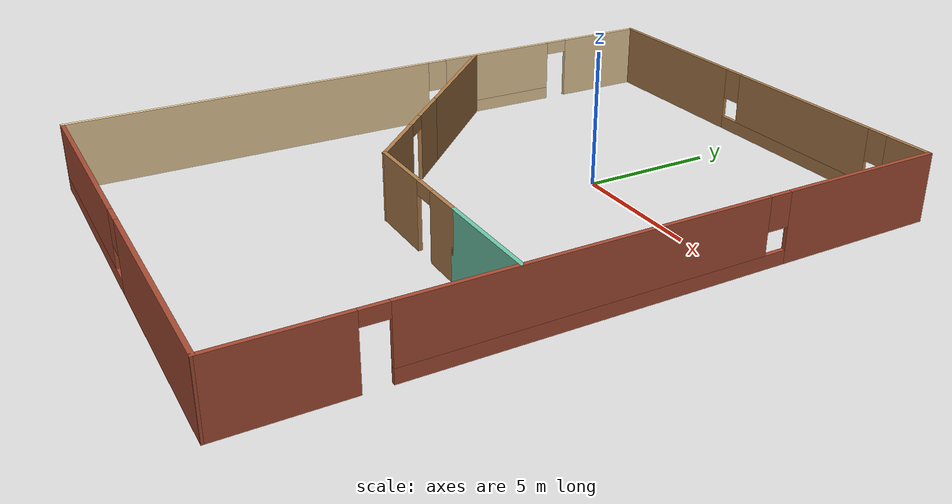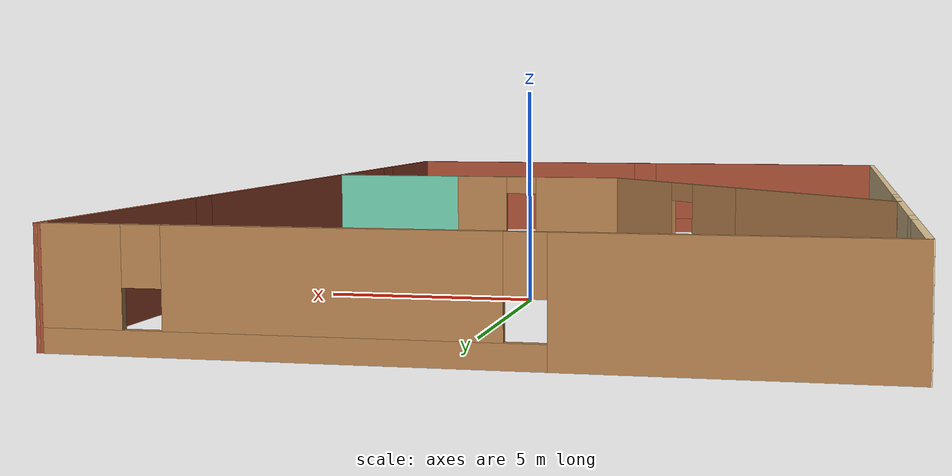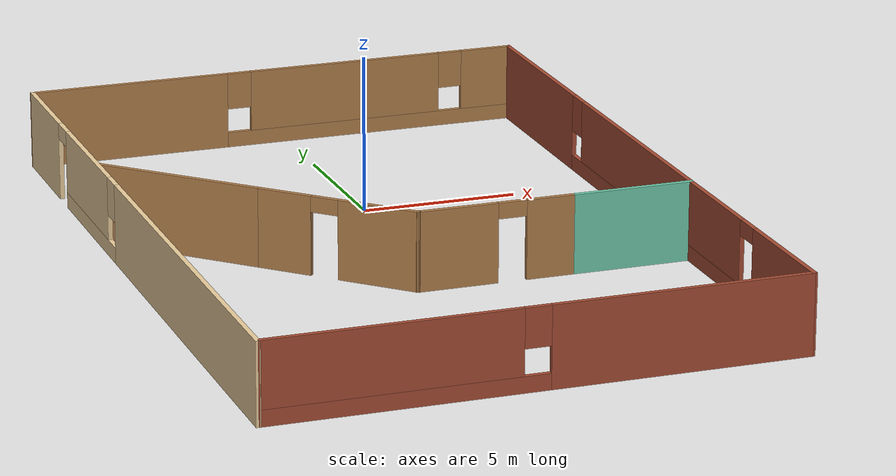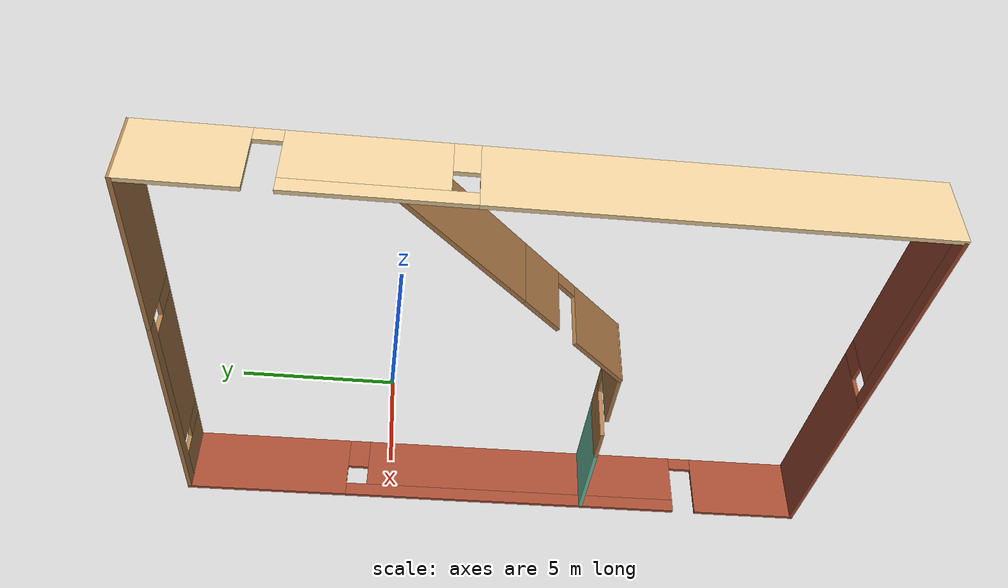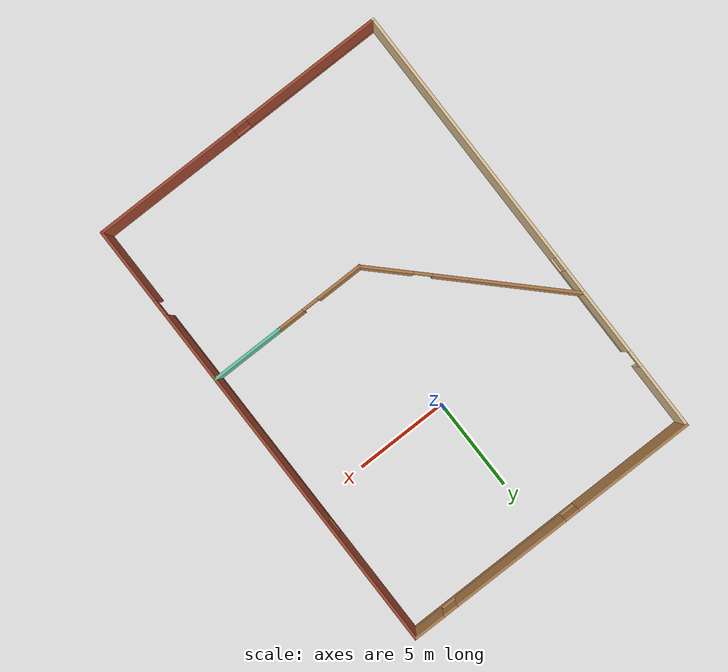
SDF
<?xml version='1.0'?>
<sdf version='1.6'>
  <model name='model'>
    <pose frame=''>-0.478725 -4.35179 0 0 -0 0</pose>
    <link name='Wall_2'>
      <pose frame=''>0.076605 12.2018 0 0 -0 0</pose>
      <visual name='Wall_2_Visual_0'>
        <pose frame=''>-4.94334 0 1.25 0 -0 0</pose>
        <geometry>
          <box>
            <size>6.61331 0.15 2.5</size>
          </box>
        </geometry>
        <material>
          <script>
            <uri>file://media/materials/scripts/gazebo.material</uri>
            <name>Gazebo/Wood</name>
          </script>
          <ambient>1 1 1 1</ambient>
        </material>
        <meta>
          <layer>0</layer>
        </meta>
      </visual>
      <collision name='Wall_2_Collision_0'>
        <geometry>
          <box>
            <size>6.61331 0.15 2.5</size>
          </box>
        </geometry>
        <pose frame=''>-4.94334 0 1.25 0 -0 0</pose>
      </collision>
      <visual name='Wall_2_Visual_1'>
        <pose frame=''>3.30666 0 0.25 0 -0 0</pose>
        <geometry>
          <box>
            <size>9.88669 0.15 0.5</size>
          </box>
        </geometry>
        <material>
          <script>
            <uri>file://media/materials/scripts/gazebo.material</uri>
            <name>Gazebo/Wood</name>
          </script>
          <ambient>1 1 1 1</ambient>
        </material>
        <meta>
          <layer>0</layer>
        </meta>
      </visual>
      <collision name='Wall_2_Collision_1'>
        <geometry>
          <box>
            <size>9.88669 0.15 0.5</size>
          </box>
        </geometry>
        <pose frame=''>3.30666 0 0.25 0 -0 0</pose>
      </collision>
      <visual name='Wall_2_Visual_2'>
        <pose frame=''>2.43911 0 1.5 0 -0 0</pose>
        <geometry>
          <box>
            <size>6.55161 0.15 2</size>
          </box>
        </geometry>
        <material>
          <script>
            <uri>file://media/materials/scripts/gazebo.material</uri>
            <name>Gazebo/Wood</name>
          </script>
          <ambient>1 1 1 1</ambient>
        </material>
        <meta>
          <layer>0</layer>
        </meta>
      </visual>
      <collision name='Wall_2_Collision_2'>
        <geometry>
          <box>
            <size>6.55161 0.15 2</size>
          </box>
        </geometry>
        <pose frame=''>2.43911 0 1.5 0 -0 0</pose>
      </collision>
      <visual name='Wall_2_Visual_3'>
        <pose frame=''>7.38246 0 1.5 0 -0 0</pose>
        <geometry>
          <box>
            <size>1.73508 0.15 2</size>
          </box>
        </geometry>
        <material>
          <script>
            <uri>file://media/materials/scripts/gazebo.material</uri>
            <name>Gazebo/Wood</name>
          </script>
          <ambient>1 1 1 1</ambient>
        </material>
        <meta>
          <layer>0</layer>
        </meta>
      </visual>
      <collision name='Wall_2_Collision_3'>
        <geometry>
          <box>
            <size>1.73508 0.15 2</size>
          </box>
        </geometry>
        <pose frame=''>7.38246 0 1.5 0 -0 0</pose>
      </collision>
      <visual name='Wall_2_Visual_4'>
        <pose frame=''>-1.23669 0 1.9 0 -0 0</pose>
        <geometry>
          <box>
            <size>0.8 0.15 1.2</size>
          </box>
        </geometry>
        <material>
          <script>
            <uri>file://media/materials/scripts/gazebo.material</uri>
            <name>Gazebo/Wood</name>
          </script>
          <ambient>1 1 1 1</ambient>
        </material>
        <meta>
          <layer>0</layer>
        </meta>
      </visual>
      <collision name='Wall_2_Collision_4'>
        <geometry>
          <box>
            <size>0.8 0.15 1.2</size>
          </box>
        </geometry>
        <pose frame=''>-1.23669 0 1.9 0 -0 0</pose>
      </collision>
      <visual name='Wall_2_Visual_5'>
        <pose frame=''>6.11492 0 1.9 0 -0 0</pose>
        <geometry>
          <box>
            <size>0.8 0.15 1.2</size>
          </box>
        </geometry>
        <material>
          <script>
            <uri>file://media/materials/scripts/gazebo.material</uri>
            <name>Gazebo/Wood</name>
          </script>
          <ambient>1 1 1 1</ambient>
        </material>
        <meta>
          <layer>0</layer>
        </meta>
      </visual>
      <collision name='Wall_2_Collision_5'>
        <geometry>
          <box>
            <size>0.8 0.15 1.2</size>
          </box>
        </geometry>
        <pose frame=''>6.11492 0 1.9 0 -0 0</pose>
      </collision>
    </link>
    <link name='Wall_28'>
      <collision name='Wall_28_Collision'>
        <geometry>
          <box>
            <size>4 0.15 2.5</size>
          </box>
        </geometry>
        <pose frame=''>0 0 1.25 0 -0 0</pose>
      </collision>
      <visual name='Wall_28_Visual'>
        <pose frame=''>0 0 1.25 0 -0 0</pose>
        <geometry>
          <box>
            <size>4 0.15 2.5</size>
          </box>
        </geometry>
        <material>
          <script>
            <uri>file://media/materials/scripts/gazebo.material</uri>
            <name>Gazebo/Grey</name>
          </script>
          <ambient>0.435294 0.796078 0.67451 1</ambient>
        </material>
        <meta>
          <layer>0</layer>
        </meta>
      </visual>
      <pose frame=''>6.25576 -3.37831 0 0 -0 0</pose>
    </link>
    <link name='Wall_3'>
      <pose frame=''>8.2155 0 0 0 0 -1.57812</pose>
      <visual name='Wall_3_Visual_0'>
        <pose frame=''>-9.19494 0 1.25 0 -0 0</pose>
        <geometry>
          <box>
            <size>6.16429 0.15 2.5</size>
          </box>
        </geometry>
        <material>
          <script>
            <uri>file://media/materials/scripts/gazebo.material</uri>
            <name>Gazebo/Bricks</name>
          </script>
          <ambient>1 0.333333 0.498039 1</ambient>
        </material>
        <meta>
          <layer>0</layer>
        </meta>
      </visual>
      <collision name='Wall_3_Collision_0'>
        <geometry>
          <box>
            <size>6.16429 0.15 2.5</size>
          </box>
        </geometry>
        <pose frame=''>-9.19494 0 1.25 0 -0 0</pose>
      </collision>
      <visual name='Wall_3_Visual_1'>
        <pose frame=''>10.1974 0 1.25 0 -0 0</pose>
        <geometry>
          <box>
            <size>4.15935 0.15 2.5</size>
          </box>
        </geometry>
        <material>
          <script>
            <uri>file://media/materials/scripts/gazebo.material</uri>
            <name>Gazebo/Bricks</name>
          </script>
          <ambient>1 0.333333 0.498039 1</ambient>
        </material>
        <meta>
          <layer>0</layer>
        </meta>
      </visual>
      <collision name='Wall_3_Collision_1'>
        <geometry>
          <box>
            <size>4.15935 0.15 2.5</size>
          </box>
        </geometry>
        <pose frame=''>10.1974 0 1.25 0 -0 0</pose>
      </collision>
      <visual name='Wall_3_Visual_2'>
        <pose frame=''>0.552472 0 0.25 0 -0 0</pose>
        <geometry>
          <box>
            <size>13.3305 0.15 0.5</size>
          </box>
        </geometry>
        <material>
          <script>
            <uri>file://media/materials/scripts/gazebo.material</uri>
            <name>Gazebo/Bricks</name>
          </script>
          <ambient>1 0.333333 0.498039 1</ambient>
        </material>
        <meta>
          <layer>0</layer>
        </meta>
      </visual>
      <collision name='Wall_3_Collision_2'>
        <geometry>
          <box>
            <size>13.3305 0.15 0.5</size>
          </box>
        </geometry>
        <pose frame=''>0.552472 0 0.25 0 -0 0</pose>
      </collision>
      <visual name='Wall_3_Visual_3'>
        <pose frame=''>0.952472 0 1.5 0 -0 0</pose>
        <geometry>
          <box>
            <size>12.5305 0.15 2</size>
          </box>
        </geometry>
        <material>
          <script>
            <uri>file://media/materials/scripts/gazebo.material</uri>
            <name>Gazebo/Bricks</name>
          </script>
          <ambient>1 0.333333 0.498039 1</ambient>
        </material>
        <meta>
          <layer>0</layer>
        </meta>
      </visual>
      <collision name='Wall_3_Collision_3'>
        <geometry>
          <box>
            <size>12.5305 0.15 2</size>
          </box>
        </geometry>
        <pose frame=''>0.952472 0 1.5 0 -0 0</pose>
      </collision>
      <visual name='Wall_3_Visual_4'>
        <pose frame=''>-5.71279 0 1.9 0 -0 0</pose>
        <geometry>
          <box>
            <size>0.8 0.15 1.2</size>
          </box>
        </geometry>
        <material>
          <script>
            <uri>file://media/materials/scripts/gazebo.material</uri>
            <name>Gazebo/Bricks</name>
          </script>
          <ambient>1 0.333333 0.498039 1</ambient>
        </material>
        <meta>
          <layer>0</layer>
        </meta>
      </visual>
      <collision name='Wall_3_Collision_4'>
        <geometry>
          <box>
            <size>0.8 0.15 1.2</size>
          </box>
        </geometry>
        <pose frame=''>-5.71279 0 1.9 0 -0 0</pose>
      </collision>
      <visual name='Wall_3_Visual_5'>
        <pose frame=''>7.66774 0 2.25 0 -0 0</pose>
        <geometry>
          <box>
            <size>0.9 0.15 0.5</size>
          </box>
        </geometry>
        <material>
          <script>
            <uri>file://media/materials/scripts/gazebo.material</uri>
            <name>Gazebo/Bricks</name>
          </script>
          <ambient>1 0.333333 0.498039 1</ambient>
        </material>
        <meta>
          <layer>0</layer>
        </meta>
      </visual>
      <collision name='Wall_3_Collision_5'>
        <geometry>
          <box>
            <size>0.9 0.15 0.5</size>
          </box>
        </geometry>
        <pose frame=''>7.66774 0 2.25 0 -0 0</pose>
      </collision>
    </link>
    <link name='Wall_4'>
      <pose frame=''>-0.048813 -12.2018 0 0 -0 3.14159</pose>
      <visual name='Wall_4_Visual_0'>
        <pose frame=''>-4.24319 0 1.25 0 -0 0</pose>
        <geometry>
          <box>
            <size>8.01363 0.15 2.5</size>
          </box>
        </geometry>
        <material>
          <script>
            <uri>file://media/materials/scripts/gazebo.material</uri>
            <name>Gazebo/Bricks</name>
          </script>
          <ambient>1 1 1 1</ambient>
        </material>
        <meta>
          <layer>0</layer>
        </meta>
      </visual>
      <collision name='Wall_4_Collision_0'>
        <geometry>
          <box>
            <size>8.01363 0.15 2.5</size>
          </box>
        </geometry>
        <pose frame=''>-4.24319 0 1.25 0 -0 0</pose>
      </collision>
      <visual name='Wall_4_Visual_1'>
        <pose frame=''>4.00681 0 0.25 0 -0 0</pose>
        <geometry>
          <box>
            <size>8.48637 0.15 0.5</size>
          </box>
        </geometry>
        <material>
          <script>
            <uri>file://media/materials/scripts/gazebo.material</uri>
            <name>Gazebo/Bricks</name>
          </script>
          <ambient>1 1 1 1</ambient>
        </material>
        <meta>
          <layer>0</layer>
        </meta>
      </visual>
      <collision name='Wall_4_Collision_1'>
        <geometry>
          <box>
            <size>8.48637 0.15 0.5</size>
          </box>
        </geometry>
        <pose frame=''>4.00681 0 0.25 0 -0 0</pose>
      </collision>
      <visual name='Wall_4_Visual_2'>
        <pose frame=''>4.40681 0 1.5 0 -0 0</pose>
        <geometry>
          <box>
            <size>7.68637 0.15 2</size>
          </box>
        </geometry>
        <material>
          <script>
            <uri>file://media/materials/scripts/gazebo.material</uri>
            <name>Gazebo/Bricks</name>
          </script>
          <ambient>1 1 1 1</ambient>
        </material>
        <meta>
          <layer>0</layer>
        </meta>
      </visual>
      <collision name='Wall_4_Collision_2'>
        <geometry>
          <box>
            <size>7.68637 0.15 2</size>
          </box>
        </geometry>
        <pose frame=''>4.40681 0 1.5 0 -0 0</pose>
      </collision>
      <visual name='Wall_4_Visual_3'>
        <pose frame=''>0.163631 0 1.9 0 -0 0</pose>
        <geometry>
          <box>
            <size>0.8 0.15 1.2</size>
          </box>
        </geometry>
        <material>
          <script>
            <uri>file://media/materials/scripts/gazebo.material</uri>
            <name>Gazebo/Bricks</name>
          </script>
          <ambient>1 1 1 1</ambient>
        </material>
        <meta>
          <layer>0</layer>
        </meta>
      </visual>
      <collision name='Wall_4_Collision_3'>
        <geometry>
          <box>
            <size>0.8 0.15 1.2</size>
          </box>
        </geometry>
        <pose frame=''>0.163631 0 1.9 0 -0 0</pose>
      </collision>
    </link>
    <link name='Wall_5'>
      <pose frame=''>-8.20156 0 0 0 -0 1.56234</pose>
      <visual name='Wall_5_Visual_0'>
        <pose frame=''>-5.11226 0 1.25 0 -0 0</pose>
        <geometry>
          <box>
            <size>14.3291 0.15 2.5</size>
          </box>
        </geometry>
        <material>
          <script>
            <uri>file://media/materials/scripts/gazebo.material</uri>
            <name>Gazebo/Grey</name>
          </script>
          <ambient>0.921569 0.807843 0.615686 1</ambient>
        </material>
        <meta>
          <layer>0</layer>
        </meta>
      </visual>
      <collision name='Wall_5_Collision_0'>
        <geometry>
          <box>
            <size>14.3291 0.15 2.5</size>
          </box>
        </geometry>
        <pose frame=''>-5.11226 0 1.25 0 -0 0</pose>
      </collision>
      <visual name='Wall_5_Visual_1'>
        <pose frame=''>10.4712 0 1.25 0 -0 0</pose>
        <geometry>
          <box>
            <size>3.61121 0.15 2.5</size>
          </box>
        </geometry>
        <material>
          <script>
            <uri>file://media/materials/scripts/gazebo.material</uri>
            <name>Gazebo/Grey</name>
          </script>
          <ambient>0.921569 0.807843 0.615686 1</ambient>
        </material>
        <meta>
          <layer>0</layer>
        </meta>
      </visual>
      <collision name='Wall_5_Collision_1'>
        <geometry>
          <box>
            <size>3.61121 0.15 2.5</size>
          </box>
        </geometry>
        <pose frame=''>10.4712 0 1.25 0 -0 0</pose>
      </collision>
      <visual name='Wall_5_Visual_2'>
        <pose frame=''>4.90895 0 0.25 0 -0 0</pose>
        <geometry>
          <box>
            <size>5.71331 0.15 0.5</size>
          </box>
        </geometry>
        <material>
          <script>
            <uri>file://media/materials/scripts/gazebo.material</uri>
            <name>Gazebo/Grey</name>
          </script>
          <ambient>0.921569 0.807843 0.615686 1</ambient>
        </material>
        <meta>
          <layer>0</layer>
        </meta>
      </visual>
      <collision name='Wall_5_Collision_2'>
        <geometry>
          <box>
            <size>5.71331 0.15 0.5</size>
          </box>
        </geometry>
        <pose frame=''>4.90895 0 0.25 0 -0 0</pose>
      </collision>
      <visual name='Wall_5_Visual_3'>
        <pose frame=''>5.30895 0 1.5 0 -0 0</pose>
        <geometry>
          <box>
            <size>4.91331 0.15 2</size>
          </box>
        </geometry>
        <material>
          <script>
            <uri>file://media/materials/scripts/gazebo.material</uri>
            <name>Gazebo/Grey</name>
          </script>
          <ambient>0.921569 0.807843 0.615686 1</ambient>
        </material>
        <meta>
          <layer>0</layer>
        </meta>
      </visual>
      <collision name='Wall_5_Collision_3'>
        <geometry>
          <box>
            <size>4.91331 0.15 2</size>
          </box>
        </geometry>
        <pose frame=''>5.30895 0 1.5 0 -0 0</pose>
      </collision>
      <visual name='Wall_5_Visual_4'>
        <pose frame=''>2.45229 0 1.9 0 -0 0</pose>
        <geometry>
          <box>
            <size>0.8 0.15 1.2</size>
          </box>
        </geometry>
        <material>
          <script>
            <uri>file://media/materials/scripts/gazebo.material</uri>
            <name>Gazebo/Grey</name>
          </script>
          <ambient>0.921569 0.807843 0.615686 1</ambient>
        </material>
        <meta>
          <layer>0</layer>
        </meta>
      </visual>
      <collision name='Wall_5_Collision_4'>
        <geometry>
          <box>
            <size>0.8 0.15 1.2</size>
          </box>
        </geometry>
        <pose frame=''>2.45229 0 1.9 0 -0 0</pose>
      </collision>
      <visual name='Wall_5_Visual_5'>
        <pose frame=''>8.2156 0 2.25 0 -0 0</pose>
        <geometry>
          <box>
            <size>0.9 0.15 0.5</size>
          </box>
        </geometry>
        <material>
          <script>
            <uri>file://media/materials/scripts/gazebo.material</uri>
            <name>Gazebo/Grey</name>
          </script>
          <ambient>0.921569 0.807843 0.615686 1</ambient>
        </material>
        <meta>
          <layer>0</layer>
        </meta>
      </visual>
      <collision name='Wall_5_Collision_5'>
        <geometry>
          <box>
            <size>0.9 0.15 0.5</size>
          </box>
        </geometry>
        <pose frame=''>8.2156 0 2.25 0 -0 0</pose>
      </collision>
    </link>
    <link name='Wall_7'>
      <collision name='Wall_7_Collision'>
        <geometry>
          <box>
            <size>5.5 0.15 2.5</size>
          </box>
        </geometry>
        <pose frame=''>0 0 1.25 0 -0 0</pose>
      </collision>
      <visual name='Wall_7_Visual'>
        <pose frame=''>0 0 1.25 0 -0 0</pose>
        <geometry>
          <box>
            <size>5.5 0.15 2.5</size>
          </box>
        </geometry>
        <material>
          <script>
            <uri>file://media/materials/scripts/gazebo.material</uri>
            <name>Gazebo/Wood</name>
          </script>
          <ambient>0.996078 0.47451 0.0196078 1</ambient>
        </material>
        <meta>
          <layer>0</layer>
        </meta>
      </visual>
      <pose frame=''>-6.19377 2.29622 0 0 0 -0.785398</pose>
    </link>
    <link name='Wall_8'>
      <pose frame=''>-2.41075 -1.4868 0 0 0 -0.785398</pose>
      <visual name='Wall_8_Visual_0'>
        <pose frame=''>-1.78989 0 1.25 0 -0 0</pose>
        <geometry>
          <box>
            <size>1.92023 0.15 2.5</size>
          </box>
        </geometry>
        <material>
          <script>
            <uri>file://media/materials/scripts/gazebo.material</uri>
            <name>Gazebo/Wood</name>
          </script>
          <ambient>0.996078 0.47451 0.0196078 1</ambient>
        </material>
        <meta>
          <layer>0</layer>
        </meta>
      </visual>
      <collision name='Wall_8_Collision_0'>
        <geometry>
          <box>
            <size>1.92023 0.15 2.5</size>
          </box>
        </geometry>
        <pose frame=''>-1.78989 0 1.25 0 -0 0</pose>
      </collision>
      <visual name='Wall_8_Visual_1'>
        <pose frame=''>1.41011 0 1.25 0 -0 0</pose>
        <geometry>
          <box>
            <size>2.67977 0.15 2.5</size>
          </box>
        </geometry>
        <material>
          <script>
            <uri>file://media/materials/scripts/gazebo.material</uri>
            <name>Gazebo/Wood</name>
          </script>
          <ambient>0.996078 0.47451 0.0196078 1</ambient>
        </material>
        <meta>
          <layer>0</layer>
        </meta>
      </visual>
      <collision name='Wall_8_Collision_1'>
        <geometry>
          <box>
            <size>2.67977 0.15 2.5</size>
          </box>
        </geometry>
        <pose frame=''>1.41011 0 1.25 0 -0 0</pose>
      </collision>
      <visual name='Wall_8_Visual_2'>
        <pose frame=''>-0.379775 0 2.25 0 -0 0</pose>
        <geometry>
          <box>
            <size>0.9 0.15 0.5</size>
          </box>
        </geometry>
        <material>
          <script>
            <uri>file://media/materials/scripts/gazebo.material</uri>
            <name>Gazebo/Wood</name>
          </script>
          <ambient>0.996078 0.47451 0.0196078 1</ambient>
        </material>
        <meta>
          <layer>0</layer>
        </meta>
      </visual>
      <collision name='Wall_8_Collision_2'>
        <geometry>
          <box>
            <size>0.9 0.15 0.5</size>
          </box>
        </geometry>
        <pose frame=''>-0.379775 0 2.25 0 -0 0</pose>
      </collision>
    </link>
    <link name='Wall_9'>
      <pose frame=''>1.90576 -3.37831 0 0 -0 0</pose>
      <visual name='Wall_9_Visual_0'>
        <pose frame=''>-1.20906 0 1.25 0 -0 0</pose>
        <geometry>
          <box>
            <size>2.58187 0.15 2.5</size>
          </box>
        </geometry>
        <material>
          <script>
            <uri>file://media/materials/scripts/gazebo.material</uri>
            <name>Gazebo/Wood</name>
          </script>
          <ambient>0.996078 0.47451 0.0196078 1</ambient>
        </material>
        <meta>
          <layer>0</layer>
        </meta>
      </visual>
      <collision name='Wall_9_Collision_0'>
        <geometry>
          <box>
            <size>2.58187 0.15 2.5</size>
          </box>
        </geometry>
        <pose frame=''>-1.20906 0 1.25 0 -0 0</pose>
      </collision>
      <visual name='Wall_9_Visual_1'>
        <pose frame=''>1.74094 0 1.25 0 -0 0</pose>
        <geometry>
          <box>
            <size>1.51813 0.15 2.5</size>
          </box>
        </geometry>
        <material>
          <script>
            <uri>file://media/materials/scripts/gazebo.material</uri>
            <name>Gazebo/Wood</name>
          </script>
          <ambient>0.996078 0.47451 0.0196078 1</ambient>
        </material>
        <meta>
          <layer>0</layer>
        </meta>
      </visual>
      <collision name='Wall_9_Collision_1'>
        <geometry>
          <box>
            <size>1.51813 0.15 2.5</size>
          </box>
        </geometry>
        <pose frame=''>1.74094 0 1.25 0 -0 0</pose>
      </collision>
      <visual name='Wall_9_Visual_2'>
        <pose frame=''>0.531874 0 2.25 0 -0 0</pose>
        <geometry>
          <box>
            <size>0.9 0.15 0.5</size>
          </box>
        </geometry>
        <material>
          <script>
            <uri>file://media/materials/scripts/gazebo.material</uri>
            <name>Gazebo/Wood</name>
          </script>
          <ambient>0.996078 0.47451 0.0196078 1</ambient>
        </material>
        <meta>
          <layer>0</layer>
        </meta>
      </visual>
      <collision name='Wall_9_Collision_2'>
        <geometry>
          <box>
            <size>0.9 0.15 0.5</size>
          </box>
        </geometry>
        <pose frame=''>0.531874 0 2.25 0 -0 0</pose>
      </collision>
    </link>
    <static>1</static>
  </model>
</sdf>
